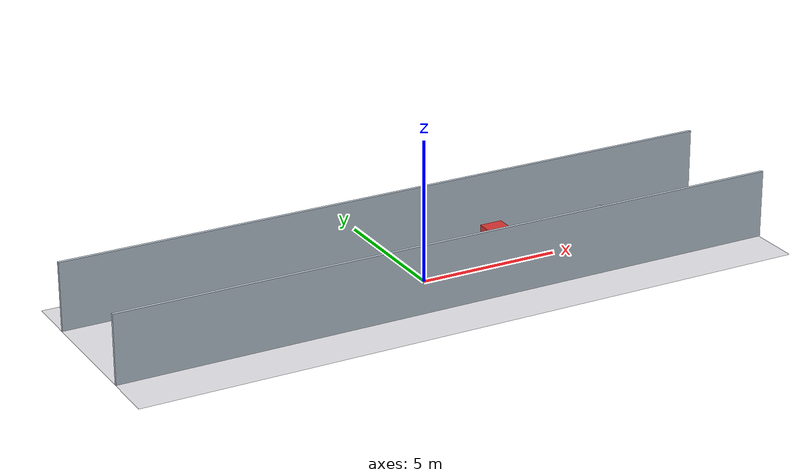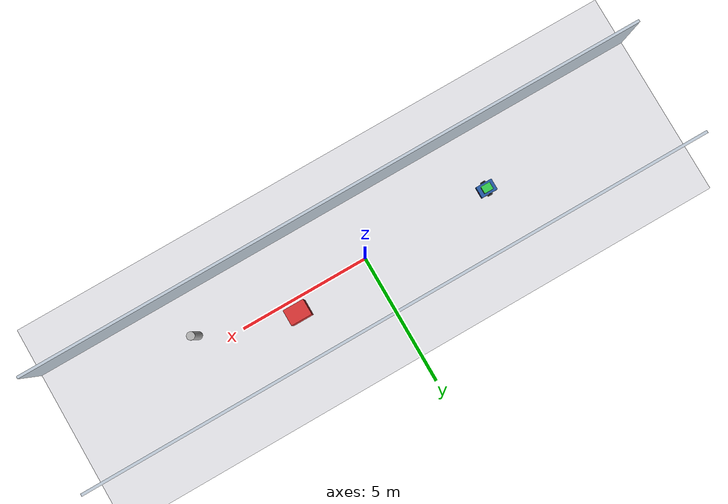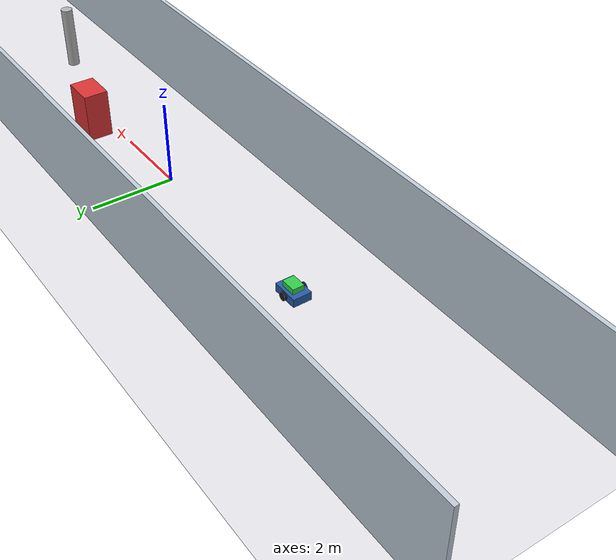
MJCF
<mujoco model="icu_medicine_delivery_amr">
  <compiler angle="radian" coordinate="local"/>
  <option gravity="0 0 -9.81" timestep="0.002" solver="Newton" iterations="50"/>
  <default>
    <geom contype="1" conaffinity="1" condim="3" friction="0.8 0.005 0.0001"/>
    <joint damping="0.1"/>
  </default>
  <asset>
    <material name="chassis_mat" rgba="0.15 0.35 0.65 1.0" roughness="0.4"/>
    <material name="wheel_mat" rgba="0.1 0.1 0.1 1.0" roughness="0.9"/>
    <material name="caster_mat" rgba="0.8 0.8 0.8 1.0" roughness="0.1"/>
    <material name="payload_mat" rgba="0.2 0.8 0.3 0.9" roughness="0.2"/>
    <material name="floor_mat" rgba="0.9 0.9 0.92 1.0" roughness="0.1"/>
    <material name="wall_mat" rgba="0.75 0.8 0.85 1.0"/>
  </asset>
  <worldbody>
    <geom name="floor" type="plane" size="12 4 0.1" material="floor_mat"/>
    <light directional="true" pos="0 0 6" dir="0 0 -1" diffuse="0.8 0.8 0.8"/>
    <geom name="north_wall" type="box" size="12 0.05 1.2" pos="0 2.2 1.2" material="wall_mat"/>
    <geom name="south_wall" type="box" size="12 0.05 1.2" pos="0 -2.2 1.2" material="wall_mat"/>
    <geom name="crash_cart" type="box" size="0.4 0.3 0.6" pos="3.0 0.5 0.6" rgba="0.85 0.2 0.2 1"/>
    <geom name="iv_stand" type="cylinder" size="0.15 0.8" pos="6.5 -0.6 0.8" rgba="0.7 0.7 0.7 1"/>
    <body name="amr_base" pos="-5.0 0 0.12">
      <freejoint name="amr_free_joint"/>
      <geom name="chassis" type="box" size="0.32 0.22 0.10" material="chassis_mat" mass="22.0"/>
      <geom name="payload_compartment" type="box" size="0.18 0.14 0.08" pos="0 0 0.15" material="payload_mat" mass="6.0"/>
      <body name="left_wheel" pos="0 0.25 0">
        <joint name="left_wheel_joint" type="hinge" axis="0 1 0" damping="0.05"/>
        <geom name="left_wheel_geom" type="cylinder" size="0.10 0.03" quat="0.7071 0.7071 0 0" material="wheel_mat" mass="1.5"/>
      </body>
      <body name="right_wheel" pos="0 -0.25 0">
        <joint name="right_wheel_joint" type="hinge" axis="0 1 0" damping="0.05"/>
        <geom name="right_wheel_geom" type="cylinder" size="0.10 0.03" quat="0.7071 0.7071 0 0" material="wheel_mat" mass="1.5"/>
      </body>
      <body name="front_caster" pos="0.22 0 -0.06">
        <geom name="front_caster_geom" type="sphere" size="0.04" material="caster_mat" mass="0.5" friction="0.005 0.001 0.0001"/>
      </body>
      <body name="rear_caster" pos="-0.22 0 -0.06">
        <geom name="rear_caster_geom" type="sphere" size="0.04" material="caster_mat" mass="0.5" friction="0.005 0.001 0.0001"/>
      </body>
      <site name="rangefinder_center" pos="0.32 0 0.05" size="0.02" rgba="1 0 0 1"/>
      <site name="rangefinder_left" pos="0.30 0.15 0.05" quat="0.9659 0 0 0.2588" size="0.02" rgba="0 1 0 1"/>
      <site name="rangefinder_right" pos="0.30 -0.15 0.05" quat="0.9659 0 0 -0.2588" size="0.02" rgba="0 0 1 1"/>
    </body>
  </worldbody>
  <actuator>
    <velocity name="left_motor" joint="left_wheel_joint" kv="50" ctrlrange="-10 10"/>
    <velocity name="right_motor" joint="right_wheel_joint" kv="50" ctrlrange="-10 10"/>
  </actuator>
  <sensor>
    <rangefinder name="rf_center" site="rangefinder_center"/>
    <rangefinder name="rf_left" site="rangefinder_left"/>
    <rangefinder name="rf_right" site="rangefinder_right"/>
  </sensor>
</mujoco>
